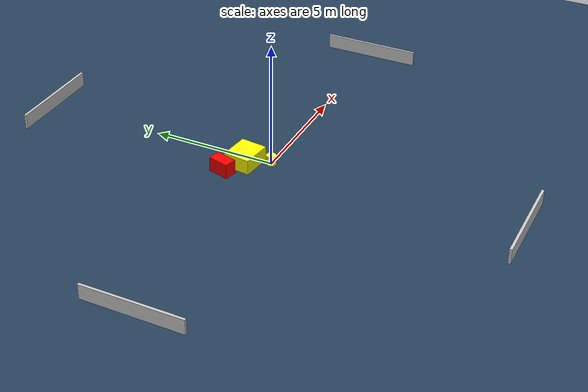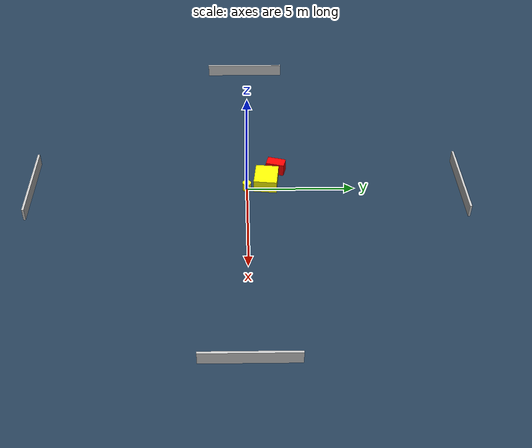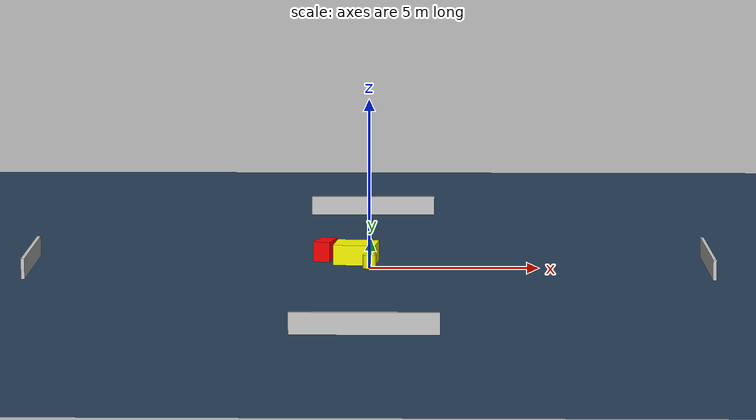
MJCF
<?xml version="1.0" ?>
<mujoco model="generated_environment">
  <option timestep="0.01" integrator="RK4" cone="elliptic"/>
  <default>
    <geom density="1"/>
  </default>
  <asset>
    <texture builtin="gradient" height="3072" name="skybox" rgb1="0.3 0.5 0.7" rgb2="0 0 0" type="skybox" width="512"/>
    <texture builtin="checker" height="300" name="groundplane" rgb1="0.2 0.3 0.4" rgb2="0.1 0.2 0.3" type="2d" width="300"/>
    <material name="groundplane" reflectance="0.2" texrepeat="5 5" texture="groundplane"/>
  </asset>
  <worldbody>
    <light dir="0 0 -1" directional="true" pos="0 0 1.5"/>
    <geom condim="3" friction="0.5 0.005 0.001" material="groundplane" name="floor" pos="0 0 0" size="0 0 0.05" type="plane"/>
    <body name="walls">
      <geom name="wall_1" condim="4" pos="-10.0 0.0 0.3" rgba="0.800000011920929 0.800000011920929 0.800000011920929 1.0" size="0.05 2.0 0.3" type="box"/>
      <geom name="wall_2" condim="4" pos="10.0 0.0 0.3" rgba="0.800000011920929 0.800000011920929 0.800000011920929 1.0" size="0.05 2.0 0.3" type="box"/>
      <geom name="wall_3" condim="4" pos="0.0 -10.0 0.3" rgba="0.800000011920929 0.800000011920929 0.800000011920929 1.0" size="2.0 0.05 0.3" type="box"/>
      <geom name="wall_4" condim="4" pos="0.0 10.0 0.3" rgba="0.800000011920929 0.800000011920929 0.800000011920929 1.0" size="2.0 0.05 0.3" type="box"/>
    </body>
    <body name="robot">
      <joint name="joint_x" type="slide" pos="0 0 0" axis="1 0 0"/>
      <joint name="joint_y" type="slide" pos="0 0 0" axis="0 1 0"/>
      <geom name="robot" type="cylinder" pos="0.0 0.0 0.2" size="0.2 0.2 0.0" mass="5.0" friction="1.0 0.005 0.0001" condim="4" rgba="1.0 1.0 0.0 1.0"/>
    </body>
    <body name="obstacle_1_movable">
      <geom name="obstacle_1_movable" condim="4" pos="-0.3961565986510229 0.9133570085018133 0.3" euler="0 0 353.38860489571607" friction="0.0 0.005 0.001" rgba="1.0 1.0 0.0 1.0" size="0.6219045307843836 0.5360036527657143 0.3" type="box" mass="0.1"/>
      <joint type="free"/>
    </body>
    <body name="obstacle_2_static">
      <geom name="obstacle_2_static" condim="4" pos="-1.327903071993999 1.4030693139378363 0.3" euler="0 0 344.6785022742788" friction="0.0 0.005 0.001" rgba="1.0 0.0 0.0 1.0" size="0.2517481998822487 0.4311614477848912 0.3" type="box"/>
    </body>
  </worldbody>
  <actuator>
    <motor name="actuator_x" joint="joint_x" gear="1" ctrlrange="-1 1"/>
    <motor name="actuator_y" joint="joint_y" gear="1" ctrlrange="-1 1"/>
  </actuator>
</mujoco>
